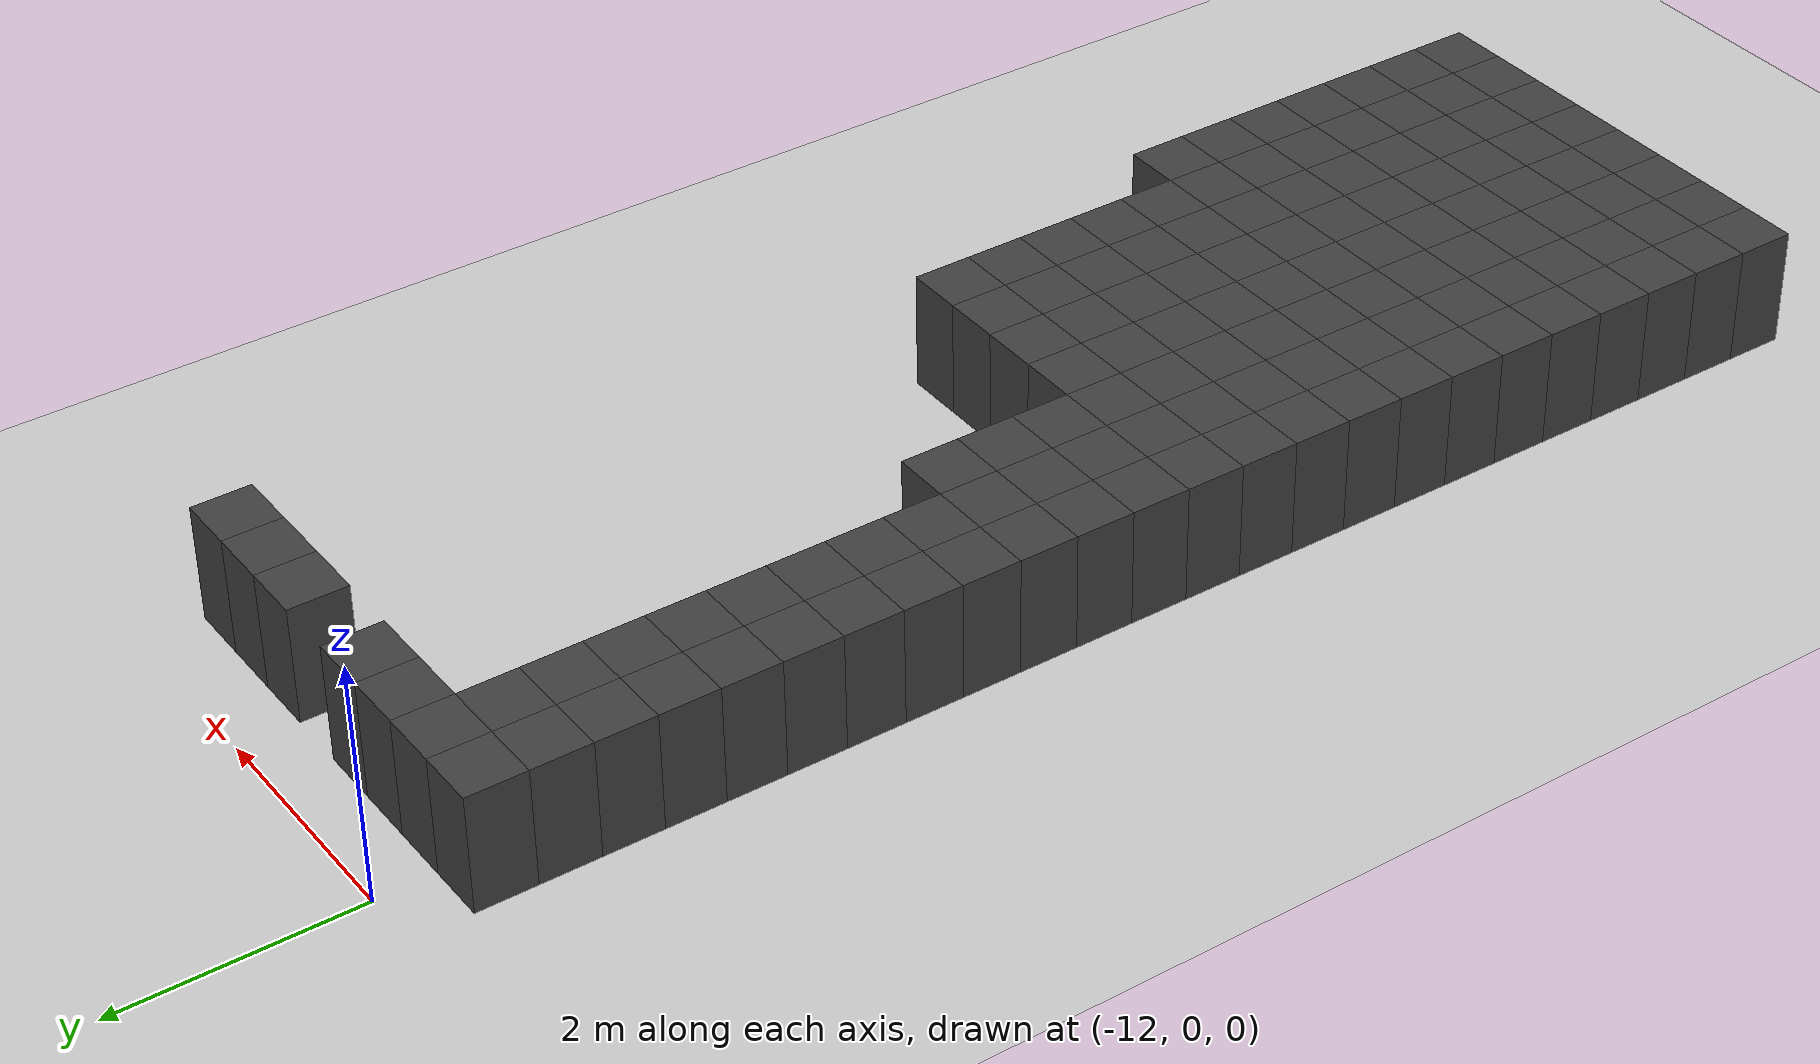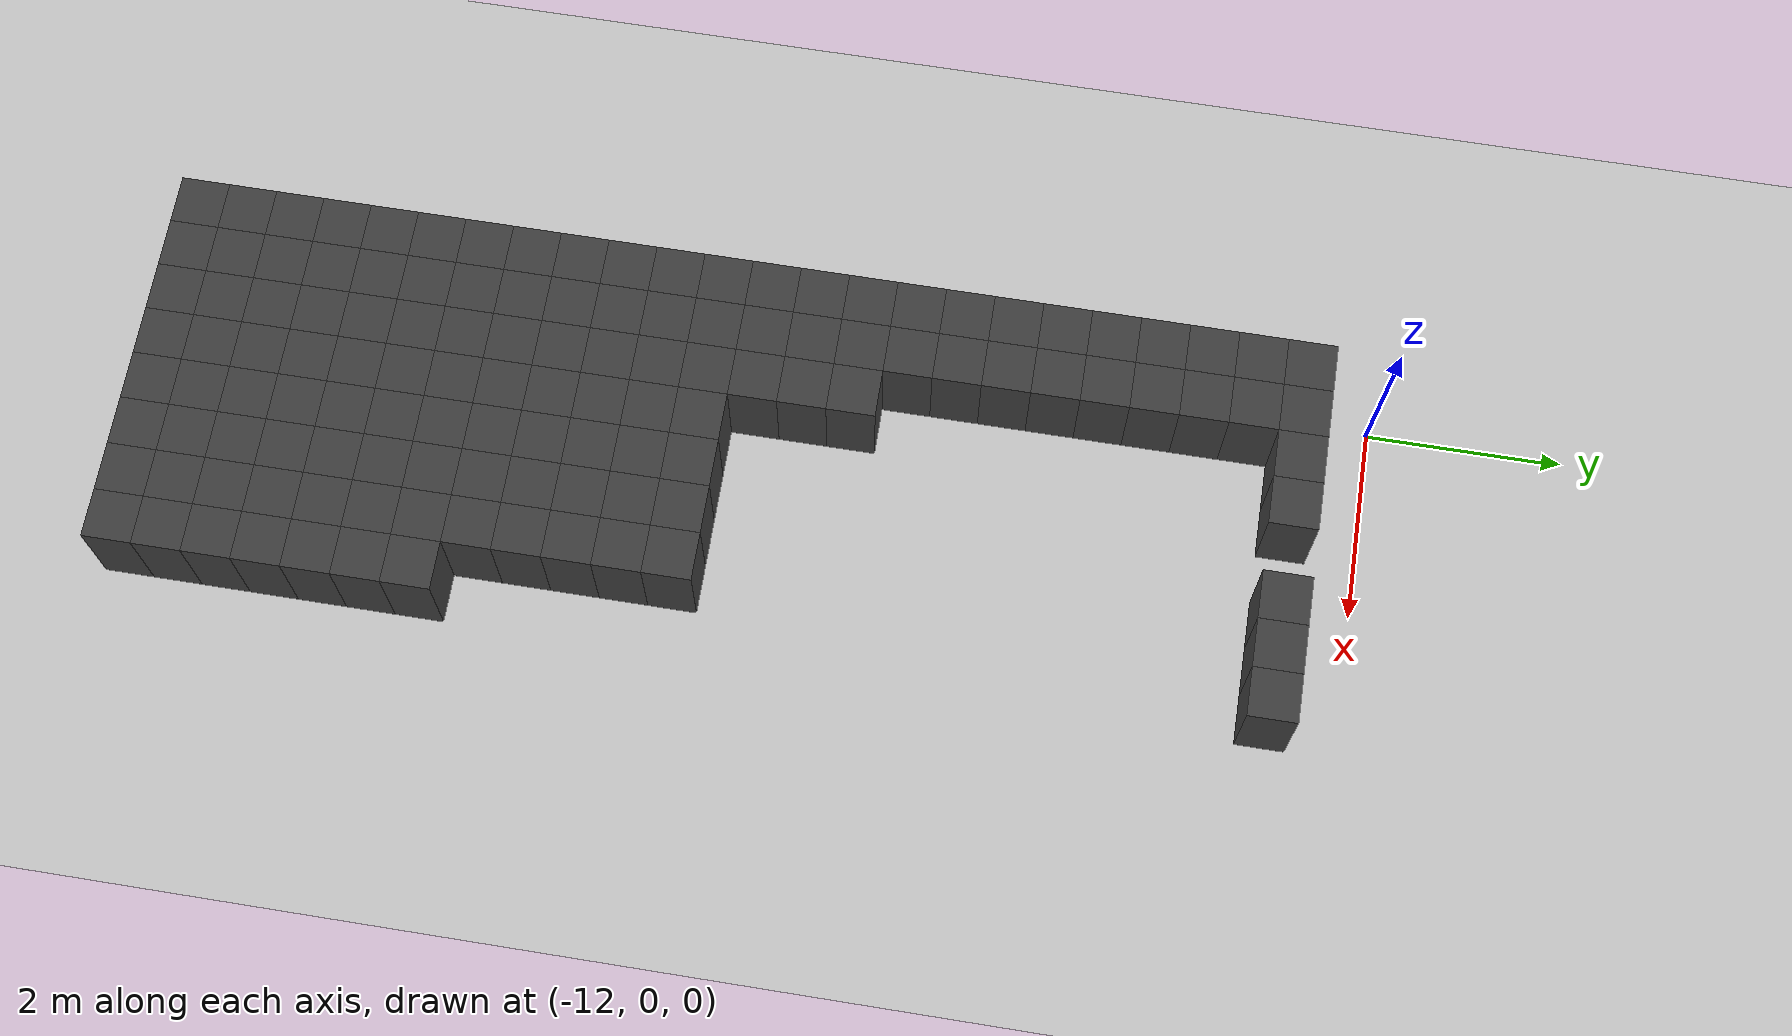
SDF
<sdf version="1.7">
 <world name="map_14668">
  <model name="ground_plane">
   <static>true</static>
   <link name="link">
    <collision name="collision">
     <geometry><plane><normal>0 0 1</normal><size>200 200</size></plane></geometry>
    </collision>
    <visual name="visual">
     <geometry><plane><normal>0 0 1</normal><size>200 200</size></plane></geometry>
     <material><ambient>0.8 0.8 0.8 1</ambient><diffuse>0.8 0.8 0.8 1</diffuse></material>
    </visual>
   </link>
  </model>
  <model name="maze_environment">
   <static>true</static>
   <link name="wall_1000">
    <pose>-12.250 -0.750 0.500 0 0 0</pose>
    <collision name="col"><geometry><box><size>0.5 0.5 1.0</size></box></geometry></collision>
    <visual name="vis">
     <geometry><box><size>0.5 0.5 1.0</size></box></geometry>
     <material><ambient>0.15 0.15 0.15 1</ambient><diffuse>0.25 0.25 0.25 1</diffuse></material>
    </visual>
   </link>
   <link name="wall_1001">
    <pose>-11.750 -0.750 0.500 0 0 0</pose>
    <collision name="col"><geometry><box><size>0.5 0.5 1.0</size></box></geometry></collision>
    <visual name="vis">
     <geometry><box><size>0.5 0.5 1.0</size></box></geometry>
     <material><ambient>0.15 0.15 0.15 1</ambient><diffuse>0.25 0.25 0.25 1</diffuse></material>
    </visual>
   </link>
   <link name="wall_1002">
    <pose>-11.250 -0.750 0.500 0 0 0</pose>
    <collision name="col"><geometry><box><size>0.5 0.5 1.0</size></box></geometry></collision>
    <visual name="vis">
     <geometry><box><size>0.5 0.5 1.0</size></box></geometry>
     <material><ambient>0.15 0.15 0.15 1</ambient><diffuse>0.25 0.25 0.25 1</diffuse></material>
    </visual>
   </link>
   <link name="wall_1003">
    <pose>-10.750 -0.750 0.500 0 0 0</pose>
    <collision name="col"><geometry><box><size>0.5 0.5 1.0</size></box></geometry></collision>
    <visual name="vis">
     <geometry><box><size>0.5 0.5 1.0</size></box></geometry>
     <material><ambient>0.15 0.15 0.15 1</ambient><diffuse>0.25 0.25 0.25 1</diffuse></material>
    </visual>
   </link>
   <link name="wall_1004">
    <pose>-9.750 -0.750 0.500 0 0 0</pose>
    <collision name="col"><geometry><box><size>0.5 0.5 1.0</size></box></geometry></collision>
    <visual name="vis">
     <geometry><box><size>0.5 0.5 1.0</size></box></geometry>
     <material><ambient>0.15 0.15 0.15 1</ambient><diffuse>0.25 0.25 0.25 1</diffuse></material>
    </visual>
   </link>
   <link name="wall_1005">
    <pose>-9.250 -0.750 0.500 0 0 0</pose>
    <collision name="col"><geometry><box><size>0.5 0.5 1.0</size></box></geometry></collision>
    <visual name="vis">
     <geometry><box><size>0.5 0.5 1.0</size></box></geometry>
     <material><ambient>0.15 0.15 0.15 1</ambient><diffuse>0.25 0.25 0.25 1</diffuse></material>
    </visual>
   </link>
   <link name="wall_1006">
    <pose>-8.750 -0.750 0.500 0 0 0</pose>
    <collision name="col"><geometry><box><size>0.5 0.5 1.0</size></box></geometry></collision>
    <visual name="vis">
     <geometry><box><size>0.5 0.5 1.0</size></box></geometry>
     <material><ambient>0.15 0.15 0.15 1</ambient><diffuse>0.25 0.25 0.25 1</diffuse></material>
    </visual>
   </link>
   <link name="wall_1049">
    <pose>-12.250 -1.250 0.500 0 0 0</pose>
    <collision name="col"><geometry><box><size>0.5 0.5 1.0</size></box></geometry></collision>
    <visual name="vis">
     <geometry><box><size>0.5 0.5 1.0</size></box></geometry>
     <material><ambient>0.15 0.15 0.15 1</ambient><diffuse>0.25 0.25 0.25 1</diffuse></material>
    </visual>
   </link>
   <link name="wall_1050">
    <pose>-11.750 -1.250 0.500 0 0 0</pose>
    <collision name="col"><geometry><box><size>0.5 0.5 1.0</size></box></geometry></collision>
    <visual name="vis">
     <geometry><box><size>0.5 0.5 1.0</size></box></geometry>
     <material><ambient>0.15 0.15 0.15 1</ambient><diffuse>0.25 0.25 0.25 1</diffuse></material>
    </visual>
   </link>
   <link name="wall_1091">
    <pose>-12.250 -1.750 0.500 0 0 0</pose>
    <collision name="col"><geometry><box><size>0.5 0.5 1.0</size></box></geometry></collision>
    <visual name="vis">
     <geometry><box><size>0.5 0.5 1.0</size></box></geometry>
     <material><ambient>0.15 0.15 0.15 1</ambient><diffuse>0.25 0.25 0.25 1</diffuse></material>
    </visual>
   </link>
   <link name="wall_1092">
    <pose>-11.750 -1.750 0.500 0 0 0</pose>
    <collision name="col"><geometry><box><size>0.5 0.5 1.0</size></box></geometry></collision>
    <visual name="vis">
     <geometry><box><size>0.5 0.5 1.0</size></box></geometry>
     <material><ambient>0.15 0.15 0.15 1</ambient><diffuse>0.25 0.25 0.25 1</diffuse></material>
    </visual>
   </link>
   <link name="wall_1127">
    <pose>-12.250 -2.250 0.500 0 0 0</pose>
    <collision name="col"><geometry><box><size>0.5 0.5 1.0</size></box></geometry></collision>
    <visual name="vis">
     <geometry><box><size>0.5 0.5 1.0</size></box></geometry>
     <material><ambient>0.15 0.15 0.15 1</ambient><diffuse>0.25 0.25 0.25 1</diffuse></material>
    </visual>
   </link>
   <link name="wall_1128">
    <pose>-11.750 -2.250 0.500 0 0 0</pose>
    <collision name="col"><geometry><box><size>0.5 0.5 1.0</size></box></geometry></collision>
    <visual name="vis">
     <geometry><box><size>0.5 0.5 1.0</size></box></geometry>
     <material><ambient>0.15 0.15 0.15 1</ambient><diffuse>0.25 0.25 0.25 1</diffuse></material>
    </visual>
   </link>
   <link name="wall_1157">
    <pose>-12.250 -2.750 0.500 0 0 0</pose>
    <collision name="col"><geometry><box><size>0.5 0.5 1.0</size></box></geometry></collision>
    <visual name="vis">
     <geometry><box><size>0.5 0.5 1.0</size></box></geometry>
     <material><ambient>0.15 0.15 0.15 1</ambient><diffuse>0.25 0.25 0.25 1</diffuse></material>
    </visual>
   </link>
   <link name="wall_1158">
    <pose>-11.750 -2.750 0.500 0 0 0</pose>
    <collision name="col"><geometry><box><size>0.5 0.5 1.0</size></box></geometry></collision>
    <visual name="vis">
     <geometry><box><size>0.5 0.5 1.0</size></box></geometry>
     <material><ambient>0.15 0.15 0.15 1</ambient><diffuse>0.25 0.25 0.25 1</diffuse></material>
    </visual>
   </link>
   <link name="wall_1180">
    <pose>-12.250 -3.250 0.500 0 0 0</pose>
    <collision name="col"><geometry><box><size>0.5 0.5 1.0</size></box></geometry></collision>
    <visual name="vis">
     <geometry><box><size>0.5 0.5 1.0</size></box></geometry>
     <material><ambient>0.15 0.15 0.15 1</ambient><diffuse>0.25 0.25 0.25 1</diffuse></material>
    </visual>
   </link>
   <link name="wall_1181">
    <pose>-11.750 -3.250 0.500 0 0 0</pose>
    <collision name="col"><geometry><box><size>0.5 0.5 1.0</size></box></geometry></collision>
    <visual name="vis">
     <geometry><box><size>0.5 0.5 1.0</size></box></geometry>
     <material><ambient>0.15 0.15 0.15 1</ambient><diffuse>0.25 0.25 0.25 1</diffuse></material>
    </visual>
   </link>
   <link name="wall_1201">
    <pose>-12.250 -3.750 0.500 0 0 0</pose>
    <collision name="col"><geometry><box><size>0.5 0.5 1.0</size></box></geometry></collision>
    <visual name="vis">
     <geometry><box><size>0.5 0.5 1.0</size></box></geometry>
     <material><ambient>0.15 0.15 0.15 1</ambient><diffuse>0.25 0.25 0.25 1</diffuse></material>
    </visual>
   </link>
   <link name="wall_1202">
    <pose>-11.750 -3.750 0.500 0 0 0</pose>
    <collision name="col"><geometry><box><size>0.5 0.5 1.0</size></box></geometry></collision>
    <visual name="vis">
     <geometry><box><size>0.5 0.5 1.0</size></box></geometry>
     <material><ambient>0.15 0.15 0.15 1</ambient><diffuse>0.25 0.25 0.25 1</diffuse></material>
    </visual>
   </link>
   <link name="wall_1222">
    <pose>-12.250 -4.250 0.500 0 0 0</pose>
    <collision name="col"><geometry><box><size>0.5 0.5 1.0</size></box></geometry></collision>
    <visual name="vis">
     <geometry><box><size>0.5 0.5 1.0</size></box></geometry>
     <material><ambient>0.15 0.15 0.15 1</ambient><diffuse>0.25 0.25 0.25 1</diffuse></material>
    </visual>
   </link>
   <link name="wall_1223">
    <pose>-11.750 -4.250 0.500 0 0 0</pose>
    <collision name="col"><geometry><box><size>0.5 0.5 1.0</size></box></geometry></collision>
    <visual name="vis">
     <geometry><box><size>0.5 0.5 1.0</size></box></geometry>
     <material><ambient>0.15 0.15 0.15 1</ambient><diffuse>0.25 0.25 0.25 1</diffuse></material>
    </visual>
   </link>
   <link name="wall_1241">
    <pose>-12.250 -4.750 0.500 0 0 0</pose>
    <collision name="col"><geometry><box><size>0.5 0.5 1.0</size></box></geometry></collision>
    <visual name="vis">
     <geometry><box><size>0.5 0.5 1.0</size></box></geometry>
     <material><ambient>0.15 0.15 0.15 1</ambient><diffuse>0.25 0.25 0.25 1</diffuse></material>
    </visual>
   </link>
   <link name="wall_1242">
    <pose>-11.750 -4.750 0.500 0 0 0</pose>
    <collision name="col"><geometry><box><size>0.5 0.5 1.0</size></box></geometry></collision>
    <visual name="vis">
     <geometry><box><size>0.5 0.5 1.0</size></box></geometry>
     <material><ambient>0.15 0.15 0.15 1</ambient><diffuse>0.25 0.25 0.25 1</diffuse></material>
    </visual>
   </link>
   <link name="wall_1258">
    <pose>-12.250 -5.250 0.500 0 0 0</pose>
    <collision name="col"><geometry><box><size>0.5 0.5 1.0</size></box></geometry></collision>
    <visual name="vis">
     <geometry><box><size>0.5 0.5 1.0</size></box></geometry>
     <material><ambient>0.15 0.15 0.15 1</ambient><diffuse>0.25 0.25 0.25 1</diffuse></material>
    </visual>
   </link>
   <link name="wall_1259">
    <pose>-11.750 -5.250 0.500 0 0 0</pose>
    <collision name="col"><geometry><box><size>0.5 0.5 1.0</size></box></geometry></collision>
    <visual name="vis">
     <geometry><box><size>0.5 0.5 1.0</size></box></geometry>
     <material><ambient>0.15 0.15 0.15 1</ambient><diffuse>0.25 0.25 0.25 1</diffuse></material>
    </visual>
   </link>
   <link name="wall_1260">
    <pose>-11.250 -5.250 0.500 0 0 0</pose>
    <collision name="col"><geometry><box><size>0.5 0.5 1.0</size></box></geometry></collision>
    <visual name="vis">
     <geometry><box><size>0.5 0.5 1.0</size></box></geometry>
     <material><ambient>0.15 0.15 0.15 1</ambient><diffuse>0.25 0.25 0.25 1</diffuse></material>
    </visual>
   </link>
   <link name="wall_1280">
    <pose>-12.250 -5.750 0.500 0 0 0</pose>
    <collision name="col"><geometry><box><size>0.5 0.5 1.0</size></box></geometry></collision>
    <visual name="vis">
     <geometry><box><size>0.5 0.5 1.0</size></box></geometry>
     <material><ambient>0.15 0.15 0.15 1</ambient><diffuse>0.25 0.25 0.25 1</diffuse></material>
    </visual>
   </link>
   <link name="wall_1281">
    <pose>-11.750 -5.750 0.500 0 0 0</pose>
    <collision name="col"><geometry><box><size>0.5 0.5 1.0</size></box></geometry></collision>
    <visual name="vis">
     <geometry><box><size>0.5 0.5 1.0</size></box></geometry>
     <material><ambient>0.15 0.15 0.15 1</ambient><diffuse>0.25 0.25 0.25 1</diffuse></material>
    </visual>
   </link>
   <link name="wall_1282">
    <pose>-11.250 -5.750 0.500 0 0 0</pose>
    <collision name="col"><geometry><box><size>0.5 0.5 1.0</size></box></geometry></collision>
    <visual name="vis">
     <geometry><box><size>0.5 0.5 1.0</size></box></geometry>
     <material><ambient>0.15 0.15 0.15 1</ambient><diffuse>0.25 0.25 0.25 1</diffuse></material>
    </visual>
   </link>
   <link name="wall_1308">
    <pose>-12.250 -6.250 0.500 0 0 0</pose>
    <collision name="col"><geometry><box><size>0.5 0.5 1.0</size></box></geometry></collision>
    <visual name="vis">
     <geometry><box><size>0.5 0.5 1.0</size></box></geometry>
     <material><ambient>0.15 0.15 0.15 1</ambient><diffuse>0.25 0.25 0.25 1</diffuse></material>
    </visual>
   </link>
   <link name="wall_1309">
    <pose>-11.750 -6.250 0.500 0 0 0</pose>
    <collision name="col"><geometry><box><size>0.5 0.5 1.0</size></box></geometry></collision>
    <visual name="vis">
     <geometry><box><size>0.5 0.5 1.0</size></box></geometry>
     <material><ambient>0.15 0.15 0.15 1</ambient><diffuse>0.25 0.25 0.25 1</diffuse></material>
    </visual>
   </link>
   <link name="wall_1310">
    <pose>-11.250 -6.250 0.500 0 0 0</pose>
    <collision name="col"><geometry><box><size>0.5 0.5 1.0</size></box></geometry></collision>
    <visual name="vis">
     <geometry><box><size>0.5 0.5 1.0</size></box></geometry>
     <material><ambient>0.15 0.15 0.15 1</ambient><diffuse>0.25 0.25 0.25 1</diffuse></material>
    </visual>
   </link>
   <link name="wall_1335">
    <pose>-12.250 -6.750 0.500 0 0 0</pose>
    <collision name="col"><geometry><box><size>0.5 0.5 1.0</size></box></geometry></collision>
    <visual name="vis">
     <geometry><box><size>0.5 0.5 1.0</size></box></geometry>
     <material><ambient>0.15 0.15 0.15 1</ambient><diffuse>0.25 0.25 0.25 1</diffuse></material>
    </visual>
   </link>
   <link name="wall_1336">
    <pose>-11.750 -6.750 0.500 0 0 0</pose>
    <collision name="col"><geometry><box><size>0.5 0.5 1.0</size></box></geometry></collision>
    <visual name="vis">
     <geometry><box><size>0.5 0.5 1.0</size></box></geometry>
     <material><ambient>0.15 0.15 0.15 1</ambient><diffuse>0.25 0.25 0.25 1</diffuse></material>
    </visual>
   </link>
   <link name="wall_1337">
    <pose>-11.250 -6.750 0.500 0 0 0</pose>
    <collision name="col"><geometry><box><size>0.5 0.5 1.0</size></box></geometry></collision>
    <visual name="vis">
     <geometry><box><size>0.5 0.5 1.0</size></box></geometry>
     <material><ambient>0.15 0.15 0.15 1</ambient><diffuse>0.25 0.25 0.25 1</diffuse></material>
    </visual>
   </link>
   <link name="wall_1338">
    <pose>-10.750 -6.750 0.500 0 0 0</pose>
    <collision name="col"><geometry><box><size>0.5 0.5 1.0</size></box></geometry></collision>
    <visual name="vis">
     <geometry><box><size>0.5 0.5 1.0</size></box></geometry>
     <material><ambient>0.15 0.15 0.15 1</ambient><diffuse>0.25 0.25 0.25 1</diffuse></material>
    </visual>
   </link>
   <link name="wall_1339">
    <pose>-10.250 -6.750 0.500 0 0 0</pose>
    <collision name="col"><geometry><box><size>0.5 0.5 1.0</size></box></geometry></collision>
    <visual name="vis">
     <geometry><box><size>0.5 0.5 1.0</size></box></geometry>
     <material><ambient>0.15 0.15 0.15 1</ambient><diffuse>0.25 0.25 0.25 1</diffuse></material>
    </visual>
   </link>
   <link name="wall_1340">
    <pose>-9.750 -6.750 0.500 0 0 0</pose>
    <collision name="col"><geometry><box><size>0.5 0.5 1.0</size></box></geometry></collision>
    <visual name="vis">
     <geometry><box><size>0.5 0.5 1.0</size></box></geometry>
     <material><ambient>0.15 0.15 0.15 1</ambient><diffuse>0.25 0.25 0.25 1</diffuse></material>
    </visual>
   </link>
   <link name="wall_1341">
    <pose>-9.250 -6.750 0.500 0 0 0</pose>
    <collision name="col"><geometry><box><size>0.5 0.5 1.0</size></box></geometry></collision>
    <visual name="vis">
     <geometry><box><size>0.5 0.5 1.0</size></box></geometry>
     <material><ambient>0.15 0.15 0.15 1</ambient><diffuse>0.25 0.25 0.25 1</diffuse></material>
    </visual>
   </link>
   <link name="wall_1365">
    <pose>-12.250 -7.250 0.500 0 0 0</pose>
    <collision name="col"><geometry><box><size>0.5 0.5 1.0</size></box></geometry></collision>
    <visual name="vis">
     <geometry><box><size>0.5 0.5 1.0</size></box></geometry>
     <material><ambient>0.15 0.15 0.15 1</ambient><diffuse>0.25 0.25 0.25 1</diffuse></material>
    </visual>
   </link>
   <link name="wall_1366">
    <pose>-11.750 -7.250 0.500 0 0 0</pose>
    <collision name="col"><geometry><box><size>0.5 0.5 1.0</size></box></geometry></collision>
    <visual name="vis">
     <geometry><box><size>0.5 0.5 1.0</size></box></geometry>
     <material><ambient>0.15 0.15 0.15 1</ambient><diffuse>0.25 0.25 0.25 1</diffuse></material>
    </visual>
   </link>
   <link name="wall_1367">
    <pose>-11.250 -7.250 0.500 0 0 0</pose>
    <collision name="col"><geometry><box><size>0.5 0.5 1.0</size></box></geometry></collision>
    <visual name="vis">
     <geometry><box><size>0.5 0.5 1.0</size></box></geometry>
     <material><ambient>0.15 0.15 0.15 1</ambient><diffuse>0.25 0.25 0.25 1</diffuse></material>
    </visual>
   </link>
   <link name="wall_1368">
    <pose>-10.750 -7.250 0.500 0 0 0</pose>
    <collision name="col"><geometry><box><size>0.5 0.5 1.0</size></box></geometry></collision>
    <visual name="vis">
     <geometry><box><size>0.5 0.5 1.0</size></box></geometry>
     <material><ambient>0.15 0.15 0.15 1</ambient><diffuse>0.25 0.25 0.25 1</diffuse></material>
    </visual>
   </link>
   <link name="wall_1369">
    <pose>-10.250 -7.250 0.500 0 0 0</pose>
    <collision name="col"><geometry><box><size>0.5 0.5 1.0</size></box></geometry></collision>
    <visual name="vis">
     <geometry><box><size>0.5 0.5 1.0</size></box></geometry>
     <material><ambient>0.15 0.15 0.15 1</ambient><diffuse>0.25 0.25 0.25 1</diffuse></material>
    </visual>
   </link>
   <link name="wall_1370">
    <pose>-9.750 -7.250 0.500 0 0 0</pose>
    <collision name="col"><geometry><box><size>0.5 0.5 1.0</size></box></geometry></collision>
    <visual name="vis">
     <geometry><box><size>0.5 0.5 1.0</size></box></geometry>
     <material><ambient>0.15 0.15 0.15 1</ambient><diffuse>0.25 0.25 0.25 1</diffuse></material>
    </visual>
   </link>
   <link name="wall_1371">
    <pose>-9.250 -7.250 0.500 0 0 0</pose>
    <collision name="col"><geometry><box><size>0.5 0.5 1.0</size></box></geometry></collision>
    <visual name="vis">
     <geometry><box><size>0.5 0.5 1.0</size></box></geometry>
     <material><ambient>0.15 0.15 0.15 1</ambient><diffuse>0.25 0.25 0.25 1</diffuse></material>
    </visual>
   </link>
   <link name="wall_1390">
    <pose>-12.250 -7.750 0.500 0 0 0</pose>
    <collision name="col"><geometry><box><size>0.5 0.5 1.0</size></box></geometry></collision>
    <visual name="vis">
     <geometry><box><size>0.5 0.5 1.0</size></box></geometry>
     <material><ambient>0.15 0.15 0.15 1</ambient><diffuse>0.25 0.25 0.25 1</diffuse></material>
    </visual>
   </link>
   <link name="wall_1391">
    <pose>-11.750 -7.750 0.500 0 0 0</pose>
    <collision name="col"><geometry><box><size>0.5 0.5 1.0</size></box></geometry></collision>
    <visual name="vis">
     <geometry><box><size>0.5 0.5 1.0</size></box></geometry>
     <material><ambient>0.15 0.15 0.15 1</ambient><diffuse>0.25 0.25 0.25 1</diffuse></material>
    </visual>
   </link>
   <link name="wall_1392">
    <pose>-11.250 -7.750 0.500 0 0 0</pose>
    <collision name="col"><geometry><box><size>0.5 0.5 1.0</size></box></geometry></collision>
    <visual name="vis">
     <geometry><box><size>0.5 0.5 1.0</size></box></geometry>
     <material><ambient>0.15 0.15 0.15 1</ambient><diffuse>0.25 0.25 0.25 1</diffuse></material>
    </visual>
   </link>
   <link name="wall_1393">
    <pose>-10.750 -7.750 0.500 0 0 0</pose>
    <collision name="col"><geometry><box><size>0.5 0.5 1.0</size></box></geometry></collision>
    <visual name="vis">
     <geometry><box><size>0.5 0.5 1.0</size></box></geometry>
     <material><ambient>0.15 0.15 0.15 1</ambient><diffuse>0.25 0.25 0.25 1</diffuse></material>
    </visual>
   </link>
   <link name="wall_1394">
    <pose>-10.250 -7.750 0.500 0 0 0</pose>
    <collision name="col"><geometry><box><size>0.5 0.5 1.0</size></box></geometry></collision>
    <visual name="vis">
     <geometry><box><size>0.5 0.5 1.0</size></box></geometry>
     <material><ambient>0.15 0.15 0.15 1</ambient><diffuse>0.25 0.25 0.25 1</diffuse></material>
    </visual>
   </link>
   <link name="wall_1395">
    <pose>-9.750 -7.750 0.500 0 0 0</pose>
    <collision name="col"><geometry><box><size>0.5 0.5 1.0</size></box></geometry></collision>
    <visual name="vis">
     <geometry><box><size>0.5 0.5 1.0</size></box></geometry>
     <material><ambient>0.15 0.15 0.15 1</ambient><diffuse>0.25 0.25 0.25 1</diffuse></material>
    </visual>
   </link>
   <link name="wall_1396">
    <pose>-9.250 -7.750 0.500 0 0 0</pose>
    <collision name="col"><geometry><box><size>0.5 0.5 1.0</size></box></geometry></collision>
    <visual name="vis">
     <geometry><box><size>0.5 0.5 1.0</size></box></geometry>
     <material><ambient>0.15 0.15 0.15 1</ambient><diffuse>0.25 0.25 0.25 1</diffuse></material>
    </visual>
   </link>
   <link name="wall_1415">
    <pose>-12.250 -8.250 0.500 0 0 0</pose>
    <collision name="col"><geometry><box><size>0.5 0.5 1.0</size></box></geometry></collision>
    <visual name="vis">
     <geometry><box><size>0.5 0.5 1.0</size></box></geometry>
     <material><ambient>0.15 0.15 0.15 1</ambient><diffuse>0.25 0.25 0.25 1</diffuse></material>
    </visual>
   </link>
   <link name="wall_1416">
    <pose>-11.750 -8.250 0.500 0 0 0</pose>
    <collision name="col"><geometry><box><size>0.5 0.5 1.0</size></box></geometry></collision>
    <visual name="vis">
     <geometry><box><size>0.5 0.5 1.0</size></box></geometry>
     <material><ambient>0.15 0.15 0.15 1</ambient><diffuse>0.25 0.25 0.25 1</diffuse></material>
    </visual>
   </link>
   <link name="wall_1417">
    <pose>-11.250 -8.250 0.500 0 0 0</pose>
    <collision name="col"><geometry><box><size>0.5 0.5 1.0</size></box></geometry></collision>
    <visual name="vis">
     <geometry><box><size>0.5 0.5 1.0</size></box></geometry>
     <material><ambient>0.15 0.15 0.15 1</ambient><diffuse>0.25 0.25 0.25 1</diffuse></material>
    </visual>
   </link>
   <link name="wall_1418">
    <pose>-10.750 -8.250 0.500 0 0 0</pose>
    <collision name="col"><geometry><box><size>0.5 0.5 1.0</size></box></geometry></collision>
    <visual name="vis">
     <geometry><box><size>0.5 0.5 1.0</size></box></geometry>
     <material><ambient>0.15 0.15 0.15 1</ambient><diffuse>0.25 0.25 0.25 1</diffuse></material>
    </visual>
   </link>
   <link name="wall_1419">
    <pose>-10.250 -8.250 0.500 0 0 0</pose>
    <collision name="col"><geometry><box><size>0.5 0.5 1.0</size></box></geometry></collision>
    <visual name="vis">
     <geometry><box><size>0.5 0.5 1.0</size></box></geometry>
     <material><ambient>0.15 0.15 0.15 1</ambient><diffuse>0.25 0.25 0.25 1</diffuse></material>
    </visual>
   </link>
   <link name="wall_1420">
    <pose>-9.750 -8.250 0.500 0 0 0</pose>
    <collision name="col"><geometry><box><size>0.5 0.5 1.0</size></box></geometry></collision>
    <visual name="vis">
     <geometry><box><size>0.5 0.5 1.0</size></box></geometry>
     <material><ambient>0.15 0.15 0.15 1</ambient><diffuse>0.25 0.25 0.25 1</diffuse></material>
    </visual>
   </link>
   <link name="wall_1421">
    <pose>-9.250 -8.250 0.500 0 0 0</pose>
    <collision name="col"><geometry><box><size>0.5 0.5 1.0</size></box></geometry></collision>
    <visual name="vis">
     <geometry><box><size>0.5 0.5 1.0</size></box></geometry>
     <material><ambient>0.15 0.15 0.15 1</ambient><diffuse>0.25 0.25 0.25 1</diffuse></material>
    </visual>
   </link>
   <link name="wall_1439">
    <pose>-12.250 -8.750 0.500 0 0 0</pose>
    <collision name="col"><geometry><box><size>0.5 0.5 1.0</size></box></geometry></collision>
    <visual name="vis">
     <geometry><box><size>0.5 0.5 1.0</size></box></geometry>
     <material><ambient>0.15 0.15 0.15 1</ambient><diffuse>0.25 0.25 0.25 1</diffuse></material>
    </visual>
   </link>
   <link name="wall_1440">
    <pose>-11.750 -8.750 0.500 0 0 0</pose>
    <collision name="col"><geometry><box><size>0.5 0.5 1.0</size></box></geometry></collision>
    <visual name="vis">
     <geometry><box><size>0.5 0.5 1.0</size></box></geometry>
     <material><ambient>0.15 0.15 0.15 1</ambient><diffuse>0.25 0.25 0.25 1</diffuse></material>
    </visual>
   </link>
   <link name="wall_1441">
    <pose>-11.250 -8.750 0.500 0 0 0</pose>
    <collision name="col"><geometry><box><size>0.5 0.5 1.0</size></box></geometry></collision>
    <visual name="vis">
     <geometry><box><size>0.5 0.5 1.0</size></box></geometry>
     <material><ambient>0.15 0.15 0.15 1</ambient><diffuse>0.25 0.25 0.25 1</diffuse></material>
    </visual>
   </link>
   <link name="wall_1442">
    <pose>-10.750 -8.750 0.500 0 0 0</pose>
    <collision name="col"><geometry><box><size>0.5 0.5 1.0</size></box></geometry></collision>
    <visual name="vis">
     <geometry><box><size>0.5 0.5 1.0</size></box></geometry>
     <material><ambient>0.15 0.15 0.15 1</ambient><diffuse>0.25 0.25 0.25 1</diffuse></material>
    </visual>
   </link>
   <link name="wall_1443">
    <pose>-10.250 -8.750 0.500 0 0 0</pose>
    <collision name="col"><geometry><box><size>0.5 0.5 1.0</size></box></geometry></collision>
    <visual name="vis">
     <geometry><box><size>0.5 0.5 1.0</size></box></geometry>
     <material><ambient>0.15 0.15 0.15 1</ambient><diffuse>0.25 0.25 0.25 1</diffuse></material>
    </visual>
   </link>
   <link name="wall_1444">
    <pose>-9.750 -8.750 0.500 0 0 0</pose>
    <collision name="col"><geometry><box><size>0.5 0.5 1.0</size></box></geometry></collision>
    <visual name="vis">
     <geometry><box><size>0.5 0.5 1.0</size></box></geometry>
     <material><ambient>0.15 0.15 0.15 1</ambient><diffuse>0.25 0.25 0.25 1</diffuse></material>
    </visual>
   </link>
   <link name="wall_1445">
    <pose>-9.250 -8.750 0.500 0 0 0</pose>
    <collision name="col"><geometry><box><size>0.5 0.5 1.0</size></box></geometry></collision>
    <visual name="vis">
     <geometry><box><size>0.5 0.5 1.0</size></box></geometry>
     <material><ambient>0.15 0.15 0.15 1</ambient><diffuse>0.25 0.25 0.25 1</diffuse></material>
    </visual>
   </link>
   <link name="wall_1469">
    <pose>-12.250 -9.250 0.500 0 0 0</pose>
    <collision name="col"><geometry><box><size>0.5 0.5 1.0</size></box></geometry></collision>
    <visual name="vis">
     <geometry><box><size>0.5 0.5 1.0</size></box></geometry>
     <material><ambient>0.15 0.15 0.15 1</ambient><diffuse>0.25 0.25 0.25 1</diffuse></material>
    </visual>
   </link>
   <link name="wall_1470">
    <pose>-11.750 -9.250 0.500 0 0 0</pose>
    <collision name="col"><geometry><box><size>0.5 0.5 1.0</size></box></geometry></collision>
    <visual name="vis">
     <geometry><box><size>0.5 0.5 1.0</size></box></geometry>
     <material><ambient>0.15 0.15 0.15 1</ambient><diffuse>0.25 0.25 0.25 1</diffuse></material>
    </visual>
   </link>
   <link name="wall_1471">
    <pose>-11.250 -9.250 0.500 0 0 0</pose>
    <collision name="col"><geometry><box><size>0.5 0.5 1.0</size></box></geometry></collision>
    <visual name="vis">
     <geometry><box><size>0.5 0.5 1.0</size></box></geometry>
     <material><ambient>0.15 0.15 0.15 1</ambient><diffuse>0.25 0.25 0.25 1</diffuse></material>
    </visual>
   </link>
   <link name="wall_1472">
    <pose>-10.750 -9.250 0.500 0 0 0</pose>
    <collision name="col"><geometry><box><size>0.5 0.5 1.0</size></box></geometry></collision>
    <visual name="vis">
     <geometry><box><size>0.5 0.5 1.0</size></box></geometry>
     <material><ambient>0.15 0.15 0.15 1</ambient><diffuse>0.25 0.25 0.25 1</diffuse></material>
    </visual>
   </link>
   <link name="wall_1473">
    <pose>-10.250 -9.250 0.500 0 0 0</pose>
    <collision name="col"><geometry><box><size>0.5 0.5 1.0</size></box></geometry></collision>
    <visual name="vis">
     <geometry><box><size>0.5 0.5 1.0</size></box></geometry>
     <material><ambient>0.15 0.15 0.15 1</ambient><diffuse>0.25 0.25 0.25 1</diffuse></material>
    </visual>
   </link>
   <link name="wall_1474">
    <pose>-9.750 -9.250 0.500 0 0 0</pose>
    <collision name="col"><geometry><box><size>0.5 0.5 1.0</size></box></geometry></collision>
    <visual name="vis">
     <geometry><box><size>0.5 0.5 1.0</size></box></geometry>
     <material><ambient>0.15 0.15 0.15 1</ambient><diffuse>0.25 0.25 0.25 1</diffuse></material>
    </visual>
   </link>
   <link name="wall_1475">
    <pose>-9.250 -9.250 0.500 0 0 0</pose>
    <collision name="col"><geometry><box><size>0.5 0.5 1.0</size></box></geometry></collision>
    <visual name="vis">
     <geometry><box><size>0.5 0.5 1.0</size></box></geometry>
     <material><ambient>0.15 0.15 0.15 1</ambient><diffuse>0.25 0.25 0.25 1</diffuse></material>
    </visual>
   </link>
   <link name="wall_1476">
    <pose>-8.750 -9.250 0.500 0 0 0</pose>
    <collision name="col"><geometry><box><size>0.5 0.5 1.0</size></box></geometry></collision>
    <visual name="vis">
     <geometry><box><size>0.5 0.5 1.0</size></box></geometry>
     <material><ambient>0.15 0.15 0.15 1</ambient><diffuse>0.25 0.25 0.25 1</diffuse></material>
    </visual>
   </link>
   <link name="wall_1501">
    <pose>-12.250 -9.750 0.500 0 0 0</pose>
    <collision name="col"><geometry><box><size>0.5 0.5 1.0</size></box></geometry></collision>
    <visual name="vis">
     <geometry><box><size>0.5 0.5 1.0</size></box></geometry>
     <material><ambient>0.15 0.15 0.15 1</ambient><diffuse>0.25 0.25 0.25 1</diffuse></material>
    </visual>
   </link>
   <link name="wall_1502">
    <pose>-11.750 -9.750 0.500 0 0 0</pose>
    <collision name="col"><geometry><box><size>0.5 0.5 1.0</size></box></geometry></collision>
    <visual name="vis">
     <geometry><box><size>0.5 0.5 1.0</size></box></geometry>
     <material><ambient>0.15 0.15 0.15 1</ambient><diffuse>0.25 0.25 0.25 1</diffuse></material>
    </visual>
   </link>
   <link name="wall_1503">
    <pose>-11.250 -9.750 0.500 0 0 0</pose>
    <collision name="col"><geometry><box><size>0.5 0.5 1.0</size></box></geometry></collision>
    <visual name="vis">
     <geometry><box><size>0.5 0.5 1.0</size></box></geometry>
     <material><ambient>0.15 0.15 0.15 1</ambient><diffuse>0.25 0.25 0.25 1</diffuse></material>
    </visual>
   </link>
   <link name="wall_1504">
    <pose>-10.750 -9.750 0.500 0 0 0</pose>
    <collision name="col"><geometry><box><size>0.5 0.5 1.0</size></box></geometry></collision>
    <visual name="vis">
     <geometry><box><size>0.5 0.5 1.0</size></box></geometry>
     <material><ambient>0.15 0.15 0.15 1</ambient><diffuse>0.25 0.25 0.25 1</diffuse></material>
    </visual>
   </link>
   <link name="wall_1505">
    <pose>-10.250 -9.750 0.500 0 0 0</pose>
    <collision name="col"><geometry><box><size>0.5 0.5 1.0</size></box></geometry></collision>
    <visual name="vis">
     <geometry><box><size>0.5 0.5 1.0</size></box></geometry>
     <material><ambient>0.15 0.15 0.15 1</ambient><diffuse>0.25 0.25 0.25 1</diffuse></material>
    </visual>
   </link>
   <link name="wall_1506">
    <pose>-9.750 -9.750 0.500 0 0 0</pose>
    <collision name="col"><geometry><box><size>0.5 0.5 1.0</size></box></geometry></collision>
    <visual name="vis">
     <geometry><box><size>0.5 0.5 1.0</size></box></geometry>
     <material><ambient>0.15 0.15 0.15 1</ambient><diffuse>0.25 0.25 0.25 1</diffuse></material>
    </visual>
   </link>
   <link name="wall_1507">
    <pose>-9.250 -9.750 0.500 0 0 0</pose>
    <collision name="col"><geometry><box><size>0.5 0.5 1.0</size></box></geometry></collision>
    <visual name="vis">
     <geometry><box><size>0.5 0.5 1.0</size></box></geometry>
     <material><ambient>0.15 0.15 0.15 1</ambient><diffuse>0.25 0.25 0.25 1</diffuse></material>
    </visual>
   </link>
   <link name="wall_1508">
    <pose>-8.750 -9.750 0.500 0 0 0</pose>
    <collision name="col"><geometry><box><size>0.5 0.5 1.0</size></box></geometry></collision>
    <visual name="vis">
     <geometry><box><size>0.5 0.5 1.0</size></box></geometry>
     <material><ambient>0.15 0.15 0.15 1</ambient><diffuse>0.25 0.25 0.25 1</diffuse></material>
    </visual>
   </link>
   <link name="wall_1530">
    <pose>-12.250 -10.250 0.500 0 0 0</pose>
    <collision name="col"><geometry><box><size>0.5 0.5 1.0</size></box></geometry></collision>
    <visual name="vis">
     <geometry><box><size>0.5 0.5 1.0</size></box></geometry>
     <material><ambient>0.15 0.15 0.15 1</ambient><diffuse>0.25 0.25 0.25 1</diffuse></material>
    </visual>
   </link>
   <link name="wall_1531">
    <pose>-11.750 -10.250 0.500 0 0 0</pose>
    <collision name="col"><geometry><box><size>0.5 0.5 1.0</size></box></geometry></collision>
    <visual name="vis">
     <geometry><box><size>0.5 0.5 1.0</size></box></geometry>
     <material><ambient>0.15 0.15 0.15 1</ambient><diffuse>0.25 0.25 0.25 1</diffuse></material>
    </visual>
   </link>
   <link name="wall_1532">
    <pose>-11.250 -10.250 0.500 0 0 0</pose>
    <collision name="col"><geometry><box><size>0.5 0.5 1.0</size></box></geometry></collision>
    <visual name="vis">
     <geometry><box><size>0.5 0.5 1.0</size></box></geometry>
     <material><ambient>0.15 0.15 0.15 1</ambient><diffuse>0.25 0.25 0.25 1</diffuse></material>
    </visual>
   </link>
   <link name="wall_1533">
    <pose>-10.750 -10.250 0.500 0 0 0</pose>
    <collision name="col"><geometry><box><size>0.5 0.5 1.0</size></box></geometry></collision>
    <visual name="vis">
     <geometry><box><size>0.5 0.5 1.0</size></box></geometry>
     <material><ambient>0.15 0.15 0.15 1</ambient><diffuse>0.25 0.25 0.25 1</diffuse></material>
    </visual>
   </link>
   <link name="wall_1534">
    <pose>-10.250 -10.250 0.500 0 0 0</pose>
    <collision name="col"><geometry><box><size>0.5 0.5 1.0</size></box></geometry></collision>
    <visual name="vis">
     <geometry><box><size>0.5 0.5 1.0</size></box></geometry>
     <material><ambient>0.15 0.15 0.15 1</ambient><diffuse>0.25 0.25 0.25 1</diffuse></material>
    </visual>
   </link>
   <link name="wall_1535">
    <pose>-9.750 -10.250 0.500 0 0 0</pose>
    <collision name="col"><geometry><box><size>0.5 0.5 1.0</size></box></geometry></collision>
    <visual name="vis">
     <geometry><box><size>0.5 0.5 1.0</size></box></geometry>
     <material><ambient>0.15 0.15 0.15 1</ambient><diffuse>0.25 0.25 0.25 1</diffuse></material>
    </visual>
   </link>
   <link name="wall_1536">
    <pose>-9.250 -10.250 0.500 0 0 0</pose>
    <collision name="col"><geometry><box><size>0.5 0.5 1.0</size></box></geometry></collision>
    <visual name="vis">
     <geometry><box><size>0.5 0.5 1.0</size></box></geometry>
     <material><ambient>0.15 0.15 0.15 1</ambient><diffuse>0.25 0.25 0.25 1</diffuse></material>
    </visual>
   </link>
   <link name="wall_1537">
    <pose>-8.750 -10.250 0.500 0 0 0</pose>
    <collision name="col"><geometry><box><size>0.5 0.5 1.0</size></box></geometry></collision>
    <visual name="vis">
     <geometry><box><size>0.5 0.5 1.0</size></box></geometry>
     <material><ambient>0.15 0.15 0.15 1</ambient><diffuse>0.25 0.25 0.25 1</diffuse></material>
    </visual>
   </link>
   <link name="wall_1563">
    <pose>-12.250 -10.750 0.500 0 0 0</pose>
    <collision name="col"><geometry><box><size>0.5 0.5 1.0</size></box></geometry></collision>
    <visual name="vis">
     <geometry><box><size>0.5 0.5 1.0</size></box></geometry>
     <material><ambient>0.15 0.15 0.15 1</ambient><diffuse>0.25 0.25 0.25 1</diffuse></material>
    </visual>
   </link>
   <link name="wall_1564">
    <pose>-11.750 -10.750 0.500 0 0 0</pose>
    <collision name="col"><geometry><box><size>0.5 0.5 1.0</size></box></geometry></collision>
    <visual name="vis">
     <geometry><box><size>0.5 0.5 1.0</size></box></geometry>
     <material><ambient>0.15 0.15 0.15 1</ambient><diffuse>0.25 0.25 0.25 1</diffuse></material>
    </visual>
   </link>
   <link name="wall_1565">
    <pose>-11.250 -10.750 0.500 0 0 0</pose>
    <collision name="col"><geometry><box><size>0.5 0.5 1.0</size></box></geometry></collision>
    <visual name="vis">
     <geometry><box><size>0.5 0.5 1.0</size></box></geometry>
     <material><ambient>0.15 0.15 0.15 1</ambient><diffuse>0.25 0.25 0.25 1</diffuse></material>
    </visual>
   </link>
   <link name="wall_1566">
    <pose>-10.750 -10.750 0.500 0 0 0</pose>
    <collision name="col"><geometry><box><size>0.5 0.5 1.0</size></box></geometry></collision>
    <visual name="vis">
     <geometry><box><size>0.5 0.5 1.0</size></box></geometry>
     <material><ambient>0.15 0.15 0.15 1</ambient><diffuse>0.25 0.25 0.25 1</diffuse></material>
    </visual>
   </link>
   <link name="wall_1567">
    <pose>-10.250 -10.750 0.500 0 0 0</pose>
    <collision name="col"><geometry><box><size>0.5 0.5 1.0</size></box></geometry></collision>
    <visual name="vis">
     <geometry><box><size>0.5 0.5 1.0</size></box></geometry>
     <material><ambient>0.15 0.15 0.15 1</ambient><diffuse>0.25 0.25 0.25 1</diffuse></material>
    </visual>
   </link>
   <link name="wall_1568">
    <pose>-9.750 -10.750 0.500 0 0 0</pose>
    <collision name="col"><geometry><box><size>0.5 0.5 1.0</size></box></geometry></collision>
    <visual name="vis">
     <geometry><box><size>0.5 0.5 1.0</size></box></geometry>
     <material><ambient>0.15 0.15 0.15 1</ambient><diffuse>0.25 0.25 0.25 1</diffuse></material>
    </visual>
   </link>
   <link name="wall_1569">
    <pose>-9.250 -10.750 0.500 0 0 0</pose>
    <collision name="col"><geometry><box><size>0.5 0.5 1.0</size></box></geometry></collision>
    <visual name="vis">
     <geometry><box><size>0.5 0.5 1.0</size></box></geometry>
     <material><ambient>0.15 0.15 0.15 1</ambient><diffuse>0.25 0.25 0.25 1</diffuse></material>
    </visual>
   </link>
   <link name="wall_1570">
    <pose>-8.750 -10.750 0.500 0 0 0</pose>
    <collision name="col"><geometry><box><size>0.5 0.5 1.0</size></box></geometry></collision>
    <visual name="vis">
     <geometry><box><size>0.5 0.5 1.0</size></box></geometry>
     <material><ambient>0.15 0.15 0.15 1</ambient><diffuse>0.25 0.25 0.25 1</diffuse></material>
    </visual>
   </link>
   <link name="wall_1603">
    <pose>-12.250 -11.250 0.500 0 0 0</pose>
    <collision name="col"><geometry><box><size>0.5 0.5 1.0</size></box></geometry></collision>
    <visual name="vis">
     <geometry><box><size>0.5 0.5 1.0</size></box></geometry>
     <material><ambient>0.15 0.15 0.15 1</ambient><diffuse>0.25 0.25 0.25 1</diffuse></material>
    </visual>
   </link>
   <link name="wall_1604">
    <pose>-11.750 -11.250 0.500 0 0 0</pose>
    <collision name="col"><geometry><box><size>0.5 0.5 1.0</size></box></geometry></collision>
    <visual name="vis">
     <geometry><box><size>0.5 0.5 1.0</size></box></geometry>
     <material><ambient>0.15 0.15 0.15 1</ambient><diffuse>0.25 0.25 0.25 1</diffuse></material>
    </visual>
   </link>
   <link name="wall_1605">
    <pose>-11.250 -11.250 0.500 0 0 0</pose>
    <collision name="col"><geometry><box><size>0.5 0.5 1.0</size></box></geometry></collision>
    <visual name="vis">
     <geometry><box><size>0.5 0.5 1.0</size></box></geometry>
     <material><ambient>0.15 0.15 0.15 1</ambient><diffuse>0.25 0.25 0.25 1</diffuse></material>
    </visual>
   </link>
   <link name="wall_1606">
    <pose>-10.750 -11.250 0.500 0 0 0</pose>
    <collision name="col"><geometry><box><size>0.5 0.5 1.0</size></box></geometry></collision>
    <visual name="vis">
     <geometry><box><size>0.5 0.5 1.0</size></box></geometry>
     <material><ambient>0.15 0.15 0.15 1</ambient><diffuse>0.25 0.25 0.25 1</diffuse></material>
    </visual>
   </link>
   <link name="wall_1607">
    <pose>-10.250 -11.250 0.500 0 0 0</pose>
    <collision name="col"><geometry><box><size>0.5 0.5 1.0</size></box></geometry></collision>
    <visual name="vis">
     <geometry><box><size>0.5 0.5 1.0</size></box></geometry>
     <material><ambient>0.15 0.15 0.15 1</ambient><diffuse>0.25 0.25 0.25 1</diffuse></material>
    </visual>
   </link>
   <link name="wall_1608">
    <pose>-9.750 -11.250 0.500 0 0 0</pose>
    <collision name="col"><geometry><box><size>0.5 0.5 1.0</size></box></geometry></collision>
    <visual name="vis">
     <geometry><box><size>0.5 0.5 1.0</size></box></geometry>
     <material><ambient>0.15 0.15 0.15 1</ambient><diffuse>0.25 0.25 0.25 1</diffuse></material>
    </visual>
   </link>
   <link name="wall_1609">
    <pose>-9.250 -11.250 0.500 0 0 0</pose>
    <collision name="col"><geometry><box><size>0.5 0.5 1.0</size></box></geometry></collision>
    <visual name="vis">
     <geometry><box><size>0.5 0.5 1.0</size></box></geometry>
     <material><ambient>0.15 0.15 0.15 1</ambient><diffuse>0.25 0.25 0.25 1</diffuse></material>
    </visual>
   </link>
   <link name="wall_1610">
    <pose>-8.750 -11.250 0.500 0 0 0</pose>
    <collision name="col"><geometry><box><size>0.5 0.5 1.0</size></box></geometry></collision>
    <visual name="vis">
     <geometry><box><size>0.5 0.5 1.0</size></box></geometry>
     <material><ambient>0.15 0.15 0.15 1</ambient><diffuse>0.25 0.25 0.25 1</diffuse></material>
    </visual>
   </link>
   <link name="wall_1638">
    <pose>-12.250 -11.750 0.500 0 0 0</pose>
    <collision name="col"><geometry><box><size>0.5 0.5 1.0</size></box></geometry></collision>
    <visual name="vis">
     <geometry><box><size>0.5 0.5 1.0</size></box></geometry>
     <material><ambient>0.15 0.15 0.15 1</ambient><diffuse>0.25 0.25 0.25 1</diffuse></material>
    </visual>
   </link>
   <link name="wall_1639">
    <pose>-11.750 -11.750 0.500 0 0 0</pose>
    <collision name="col"><geometry><box><size>0.5 0.5 1.0</size></box></geometry></collision>
    <visual name="vis">
     <geometry><box><size>0.5 0.5 1.0</size></box></geometry>
     <material><ambient>0.15 0.15 0.15 1</ambient><diffuse>0.25 0.25 0.25 1</diffuse></material>
    </visual>
   </link>
   <link name="wall_1640">
    <pose>-11.250 -11.750 0.500 0 0 0</pose>
    <collision name="col"><geometry><box><size>0.5 0.5 1.0</size></box></geometry></collision>
    <visual name="vis">
     <geometry><box><size>0.5 0.5 1.0</size></box></geometry>
     <material><ambient>0.15 0.15 0.15 1</ambient><diffuse>0.25 0.25 0.25 1</diffuse></material>
    </visual>
   </link>
   <link name="wall_1641">
    <pose>-10.750 -11.750 0.500 0 0 0</pose>
    <collision name="col"><geometry><box><size>0.5 0.5 1.0</size></box></geometry></collision>
    <visual name="vis">
     <geometry><box><size>0.5 0.5 1.0</size></box></geometry>
     <material><ambient>0.15 0.15 0.15 1</ambient><diffuse>0.25 0.25 0.25 1</diffuse></material>
    </visual>
   </link>
   <link name="wall_1642">
    <pose>-10.250 -11.750 0.500 0 0 0</pose>
    <collision name="col"><geometry><box><size>0.5 0.5 1.0</size></box></geometry></collision>
    <visual name="vis">
     <geometry><box><size>0.5 0.5 1.0</size></box></geometry>
     <material><ambient>0.15 0.15 0.15 1</ambient><diffuse>0.25 0.25 0.25 1</diffuse></material>
    </visual>
   </link>
   <link name="wall_1643">
    <pose>-9.750 -11.750 0.500 0 0 0</pose>
    <collision name="col"><geometry><box><size>0.5 0.5 1.0</size></box></geometry></collision>
    <visual name="vis">
     <geometry><box><size>0.5 0.5 1.0</size></box></geometry>
     <material><ambient>0.15 0.15 0.15 1</ambient><diffuse>0.25 0.25 0.25 1</diffuse></material>
    </visual>
   </link>
   <link name="wall_1644">
    <pose>-9.250 -11.750 0.500 0 0 0</pose>
    <collision name="col"><geometry><box><size>0.5 0.5 1.0</size></box></geometry></collision>
    <visual name="vis">
     <geometry><box><size>0.5 0.5 1.0</size></box></geometry>
     <material><ambient>0.15 0.15 0.15 1</ambient><diffuse>0.25 0.25 0.25 1</diffuse></material>
    </visual>
   </link>
   <link name="wall_1645">
    <pose>-8.750 -11.750 0.500 0 0 0</pose>
    <collision name="col"><geometry><box><size>0.5 0.5 1.0</size></box></geometry></collision>
    <visual name="vis">
     <geometry><box><size>0.5 0.5 1.0</size></box></geometry>
     <material><ambient>0.15 0.15 0.15 1</ambient><diffuse>0.25 0.25 0.25 1</diffuse></material>
    </visual>
   </link>
   <link name="wall_1685">
    <pose>-12.250 -12.250 0.500 0 0 0</pose>
    <collision name="col"><geometry><box><size>0.5 0.5 1.0</size></box></geometry></collision>
    <visual name="vis">
     <geometry><box><size>0.5 0.5 1.0</size></box></geometry>
     <material><ambient>0.15 0.15 0.15 1</ambient><diffuse>0.25 0.25 0.25 1</diffuse></material>
    </visual>
   </link>
   <link name="wall_1686">
    <pose>-11.750 -12.250 0.500 0 0 0</pose>
    <collision name="col"><geometry><box><size>0.5 0.5 1.0</size></box></geometry></collision>
    <visual name="vis">
     <geometry><box><size>0.5 0.5 1.0</size></box></geometry>
     <material><ambient>0.15 0.15 0.15 1</ambient><diffuse>0.25 0.25 0.25 1</diffuse></material>
    </visual>
   </link>
   <link name="wall_1687">
    <pose>-11.250 -12.250 0.500 0 0 0</pose>
    <collision name="col"><geometry><box><size>0.5 0.5 1.0</size></box></geometry></collision>
    <visual name="vis">
     <geometry><box><size>0.5 0.5 1.0</size></box></geometry>
     <material><ambient>0.15 0.15 0.15 1</ambient><diffuse>0.25 0.25 0.25 1</diffuse></material>
    </visual>
   </link>
   <link name="wall_1688">
    <pose>-10.750 -12.250 0.500 0 0 0</pose>
    <collision name="col"><geometry><box><size>0.5 0.5 1.0</size></box></geometry></collision>
    <visual name="vis">
     <geometry><box><size>0.5 0.5 1.0</size></box></geometry>
     <material><ambient>0.15 0.15 0.15 1</ambient><diffuse>0.25 0.25 0.25 1</diffuse></material>
    </visual>
   </link>
   <link name="wall_1689">
    <pose>-10.250 -12.250 0.500 0 0 0</pose>
    <collision name="col"><geometry><box><size>0.5 0.5 1.0</size></box></geometry></collision>
    <visual name="vis">
     <geometry><box><size>0.5 0.5 1.0</size></box></geometry>
     <material><ambient>0.15 0.15 0.15 1</ambient><diffuse>0.25 0.25 0.25 1</diffuse></material>
    </visual>
   </link>
   <link name="wall_1690">
    <pose>-9.750 -12.250 0.500 0 0 0</pose>
    <collision name="col"><geometry><box><size>0.5 0.5 1.0</size></box></geometry></collision>
    <visual name="vis">
     <geometry><box><size>0.5 0.5 1.0</size></box></geometry>
     <material><ambient>0.15 0.15 0.15 1</ambient><diffuse>0.25 0.25 0.25 1</diffuse></material>
    </visual>
   </link>
   <link name="wall_1691">
    <pose>-9.250 -12.250 0.500 0 0 0</pose>
    <collision name="col"><geometry><box><size>0.5 0.5 1.0</size></box></geometry></collision>
    <visual name="vis">
     <geometry><box><size>0.5 0.5 1.0</size></box></geometry>
     <material><ambient>0.15 0.15 0.15 1</ambient><diffuse>0.25 0.25 0.25 1</diffuse></material>
    </visual>
   </link>
   <link name="wall_1692">
    <pose>-8.750 -12.250 0.500 0 0 0</pose>
    <collision name="col"><geometry><box><size>0.5 0.5 1.0</size></box></geometry></collision>
    <visual name="vis">
     <geometry><box><size>0.5 0.5 1.0</size></box></geometry>
     <material><ambient>0.15 0.15 0.15 1</ambient><diffuse>0.25 0.25 0.25 1</diffuse></material>
    </visual>
   </link>
  </model>
 </world>
</sdf>
